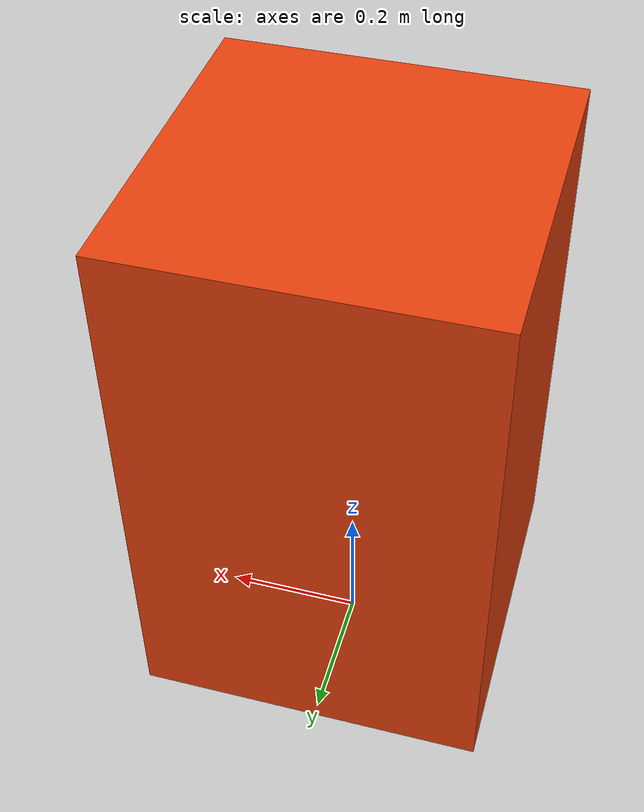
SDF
<?xml version="1.0" encoding="UTF-8"?>
<sdf version="1.9">
  <model name="target_box">
    <static>false</static>
    <self_collide>false</self_collide>
    <link name="link">
      <!-- Ground clearance avoids tip-over torque; README pitfall 10. -->
      <pose>0 0 0.45 0 0 0</pose>
      <gravity>false</gravity>
      <inertial>
        <mass>2.0</mass>
        <inertia>
          <ixx>0.148333</ixx>
          <ixy>0</ixy>
          <ixz>0</ixz>
          <iyy>0.148333</iyy>
          <iyz>0</iyz>
          <izz>0.083333</izz>
        </inertia>
      </inertial>
      <collision name="collision">
        <geometry>
          <box>
            <size>0.5 0.5 0.8</size>
          </box>
        </geometry>
      </collision>
      <visual name="visual">
        <geometry>
          <box>
            <size>0.5 0.5 0.8</size>
          </box>
        </geometry>
        <material>
          <ambient>0.90 0.25 0.05 1</ambient>
          <diffuse>0.90 0.25 0.05 1</diffuse>
          <specular>0.2 0.2 0.2 1</specular>
        </material>
      </visual>
    </link>
    <plugin
        filename="gz-sim-velocity-control-system"
        name="gz::sim::systems::VelocityControl">
    </plugin>
  </model>
</sdf>
